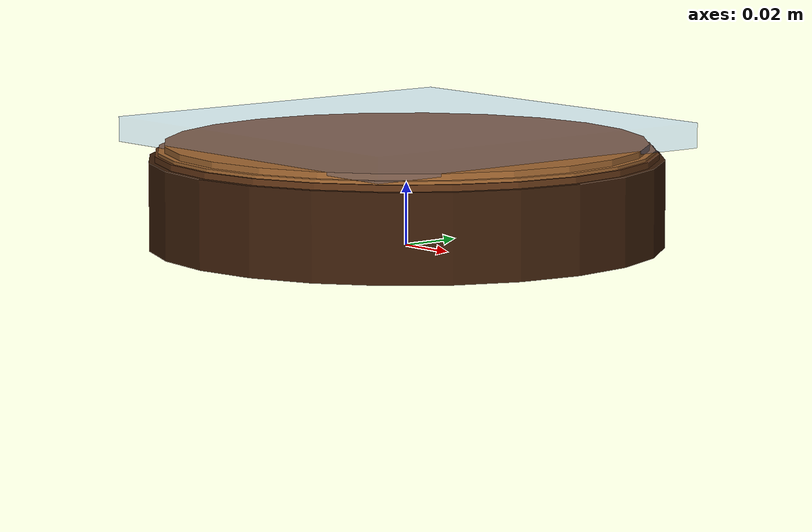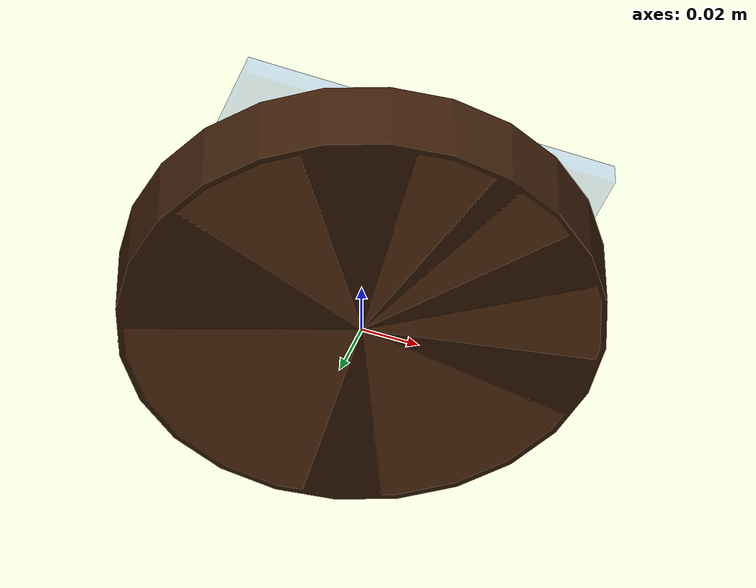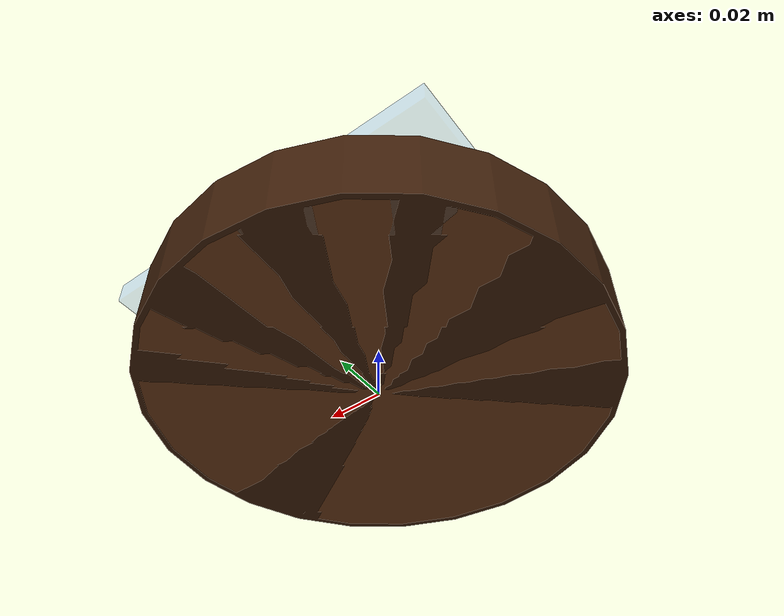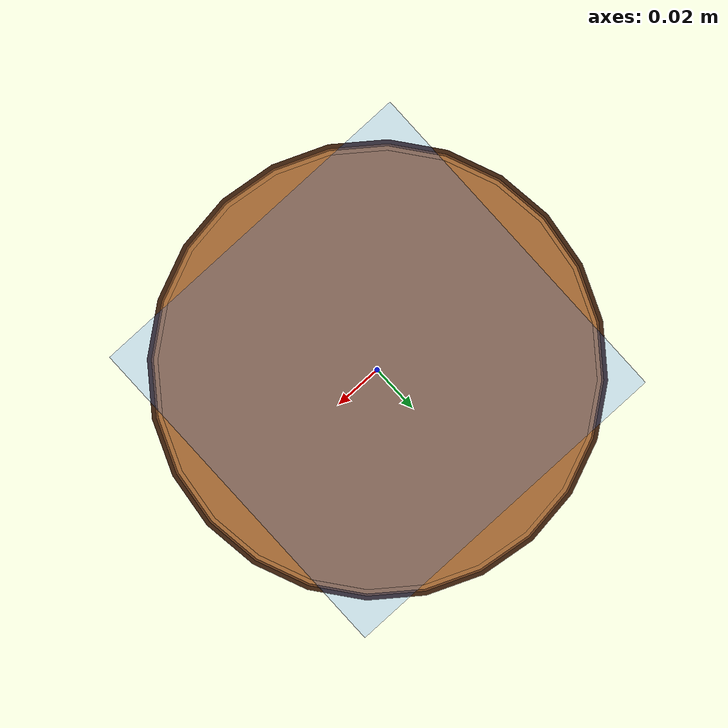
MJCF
<mujoco model="coaster_pad">
  <compiler angle="radian" />
  <asset>
    <material name="mat_coaster_base" rgba="0.40 0.22 0.09 1" specular="0.12" shininess="0.06" />
    <material name="mat_coaster_top" rgba="0.66 0.42 0.20 1" specular="0.10" shininess="0.06" />
    <material name="mat_coaster_border" rgba="0.24 0.12 0.04 1" specular="0.10" shininess="0.05" />
  </asset>
  <worldbody>
    <body>
      <body name="object">
        <site name="mug_region" type="box" pos="0 0 0.036" quat="1 0 0 0" size="0.065 0.065 0.004" rgba="0.05 0.4 1.0 0.14" />
        <geom name="coaster_collision" type="cylinder" pos="0 0 0.015" size="0.080 0.015" material="mat_coaster_base" group="0" friction="1.0 0.3 0.1" />
        <geom name="coaster_visual" type="cylinder" pos="0 0 0.017" size="0.079 0.014" material="mat_coaster_top" group="1" contype="0" conaffinity="0" />
        <geom name="coaster_side_visual" type="cylinder" pos="0 0 0.014" size="0.082 0.014" material="mat_coaster_border" group="1" contype="0" conaffinity="0" />
        <geom name="coaster_top_visual" type="cylinder" pos="0 0 0.031" size="0.077 0.002" material="mat_coaster_top" group="1" contype="0" conaffinity="0" />
      </body>
      <site rgba="0 0 0 0" size="0.06" pos="0 0 -0.005" name="bottom_site" />
      <site rgba="0 0 0 0" size="0.06" pos="0 0 0.045" name="top_site" />
      <site rgba="0 0 0 0" size="0.085" pos="0.085 0.085 0" name="horizontal_radius_site" />
    </body>
  </worldbody>
</mujoco>
